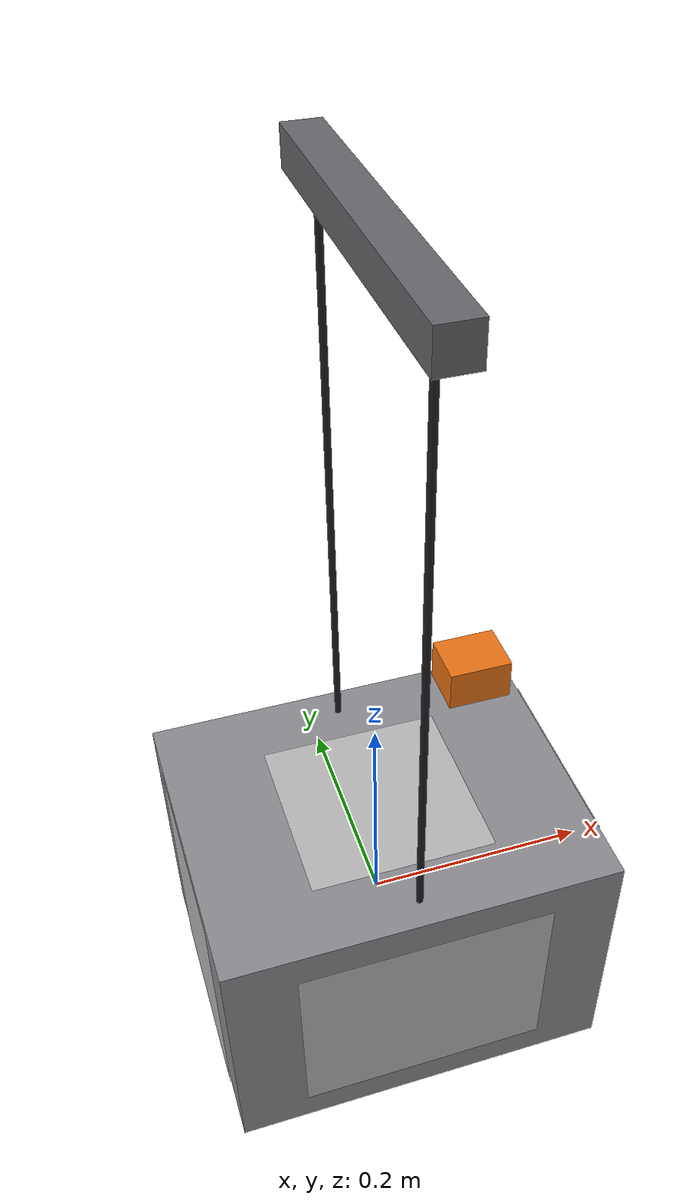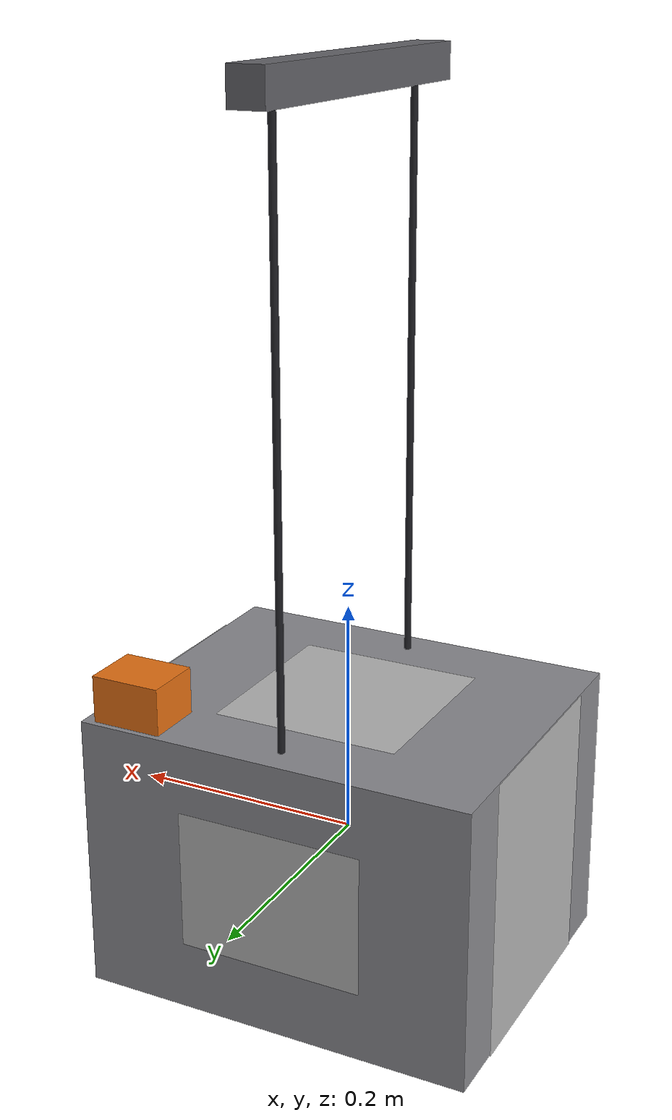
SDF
<?xml version="1.0"?>
<sdf version="1.7">
  <model name="simple_hanging_workpiece">
    <static>true</static>

    <!-- 主体 0.34×0.28×0.24m                                          -->
    <link name="main_body">
      <pose>0 0 0 0 0 0</pose>

      <visual name="body_vis">
        <geometry><box><size>0.34 0.28 0.24</size></box></geometry>
        <material>
          <ambient>0.55 0.55 0.57 1</ambient>
          <diffuse>0.55 0.55 0.57 1</diffuse>
        </material>
      </visual>

      <collision name="body_col">
        <geometry><box><size>0.34 0.28 0.24</size></box></geometry>
      </collision>
    </link>

    <!-- 顶部偏置块 (非对称特征, 不遮挡 Top AprilTag)                    -->
    <!-- size=0.06×0.05×0.04, pose=0.13 0.11 0.14                      -->
    <!-- 与 Top 面板 (XY ±0.08) 至少保留 5mm 空隙                       -->
    <link name="top_offset_block">
      <pose>0.13 0.11 0.14 0 0 0</pose>

      <visual name="block_vis">
        <geometry><box><size>0.06 0.05 0.04</size></box></geometry>
        <material>
          <ambient>0.92 0.45 0.08 1</ambient>
          <diffuse>0.92 0.45 0.08 1</diffuse>
        </material>
      </visual>
    </link>

    <!-- 面板 (DAE mesh, 1×1m XY 平面, UV 0→1, 双面)                   -->
    <!-- pose 将 Z-normal 平面旋转到对应面方向, scale 匹配物理尺寸       -->
    <!-- PANEL_GAP = 0.001 m                                           -->

    <!-- Front: ChArUco 8×6, 0.24×0.18m, 面向 +X -->
    <link name="front_panel">
      <pose>0.171 0 0 0 1.570796 0</pose>
      <visual name="front_panel_vis">
        <geometry>
          <mesh>
            <uri>model://calibration_target_v1/meshes/panel_unit.dae</uri>
            <scale>0.24 0.18 1.0</scale>
          </mesh>
        </geometry>
        <cast_shadows>false</cast_shadows>
        <material>
          <script>
            <uri>model://calibration_target_v1/materials/scripts</uri>
            <uri>model://calibration_target_v1/materials/textures</uri>
            <name>CR5/Calibration/CharucoFrontV1</name>
          </script>
        </material>
      </visual>
    </link>

    <!-- Left: ChArUco 6×5, 0.16×0.12m, 面向 +Y -->
    <link name="left_panel">
      <pose>0 0.141 0 -1.570796 0 0</pose>
      <visual name="left_panel_vis">
        <geometry>
          <mesh>
            <uri>model://calibration_target_v1/meshes/panel_unit.dae</uri>
            <scale>0.16 0.12 1.0</scale>
          </mesh>
        </geometry>
        <cast_shadows>false</cast_shadows>
        <material>
          <script>
            <uri>model://calibration_target_v1/materials/scripts</uri>
            <uri>model://calibration_target_v1/materials/textures</uri>
            <name>CR5/Calibration/CharucoLeftV1</name>
          </script>
        </material>
      </visual>
    </link>

    <!-- Right: AprilTag 2×2, 0.22×0.18m, 面向 -Y -->
    <link name="right_panel">
      <pose>0 -0.141 0 1.570796 0 0</pose>
      <visual name="right_panel_vis">
        <geometry>
          <mesh>
            <uri>model://calibration_target_v1/meshes/panel_unit.dae</uri>
            <scale>0.22 0.18 1.0</scale>
          </mesh>
        </geometry>
        <cast_shadows>false</cast_shadows>
        <material>
          <script>
            <uri>model://calibration_target_v1/materials/scripts</uri>
            <uri>model://calibration_target_v1/materials/textures</uri>
            <name>CR5/Calibration/AprilTagRightV1</name>
          </script>
        </material>
      </visual>
    </link>

    <!-- Top: AprilTag, 0.16×0.16m, 面向 +Z -->
    <link name="top_panel">
      <pose>0 0 0.121 0 0 0</pose>
      <visual name="top_panel_vis">
        <geometry>
          <mesh>
            <uri>model://calibration_target_v1/meshes/panel_unit.dae</uri>
            <scale>0.16 0.16 1.0</scale>
          </mesh>
        </geometry>
        <cast_shadows>false</cast_shadows>
        <material>
          <script>
            <uri>model://calibration_target_v1/materials/scripts</uri>
            <uri>model://calibration_target_v1/materials/textures</uri>
            <name>CR5/Calibration/AprilTagTopV1</name>
          </script>
        </material>
      </visual>
    </link>

    <!-- Back: ChArUco 8×6, 0.24×0.18m, 面向 -X -->
    <link name="back_panel">
      <pose>-0.171 0 0 0 -1.570796 0</pose>
      <visual name="back_panel_vis">
        <geometry>
          <mesh>
            <uri>model://calibration_target_v1/meshes/panel_unit.dae</uri>
            <scale>0.24 0.18 1.0</scale>
          </mesh>
        </geometry>
        <cast_shadows>false</cast_shadows>
        <material>
          <script>
            <uri>model://calibration_target_v1/materials/scripts</uri>
            <uri>model://calibration_target_v1/materials/textures</uri>
            <name>CR5/Calibration/CharucoBackV1</name>
          </script>
        </material>
      </visual>
    </link>

    <!-- 吊索 + 横杆                                                    -->
    <!-- hanger_y = ±0.115, cable z 范围 0.12~0.605, length=0.485      -->
    <link name="spreader_bar">
      <pose>0 0 0.62 0 0 0</pose>
      <visual name="bar_vis">
        <geometry><box><size>0.03 0.30 0.03</size></box></geometry>
        <material>
          <ambient>0.40 0.40 0.42 1</ambient>
        </material>
      </visual>
      <collision name="bar_col">
        <geometry><box><size>0.03 0.30 0.03</size></box></geometry>
      </collision>
    </link>

    <link name="left_cable">
      <pose>0 -0.115 0.3625 0 0 0</pose>
      <visual name="left_cable_vis">
        <geometry><cylinder><radius>0.003</radius><length>0.485</length></cylinder></geometry>
        <material>
          <ambient>0.12 0.12 0.14 1</ambient>
        </material>
      </visual>
    </link>

    <link name="right_cable">
      <pose>0 0.115 0.3625 0 0 0</pose>
      <visual name="right_cable_vis">
        <geometry><cylinder><radius>0.003</radius><length>0.485</length></cylinder></geometry>
        <material>
          <ambient>0.12 0.12 0.14 1</ambient>
        </material>
      </visual>
    </link>

  </model>
</sdf>
